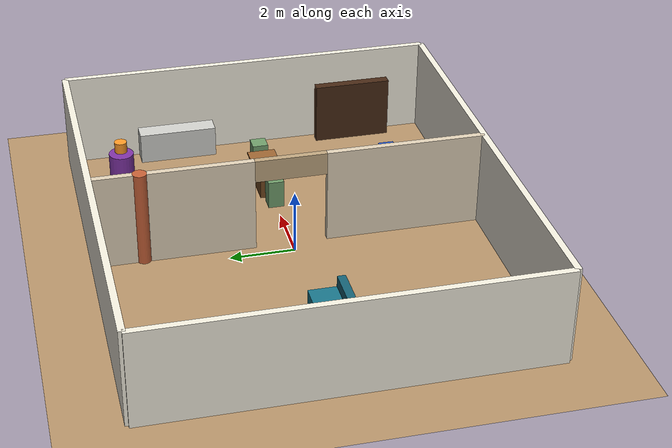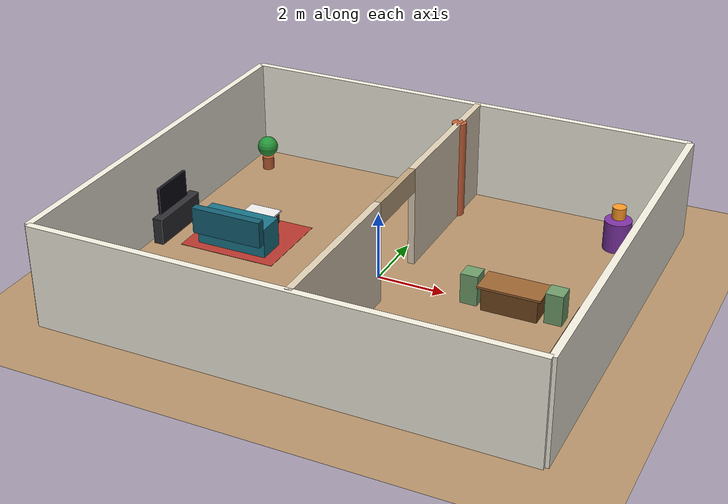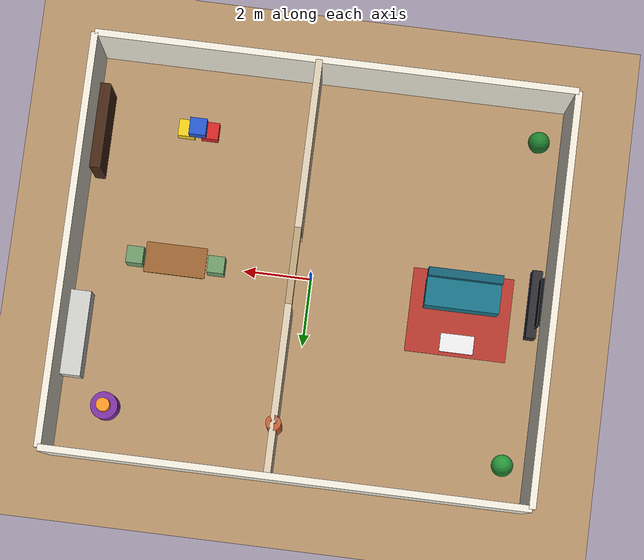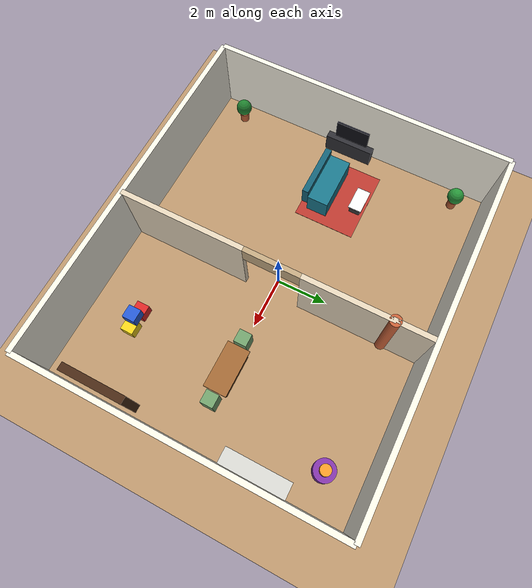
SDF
<?xml version="1.0"?>
<sdf version="1.10">

<world name="colorful_house">

  <!-- 250 Hz physics (0.004s step) instead of the 1000 Hz default.
       Big RTF win for a wheeled and arm robot; accuracy stays fine for a demo. -->
  <physics name="250hz" type="ignored">
    <max_step_size>0.004</max_step_size>
    <real_time_factor>1.0</real_time_factor>
  </physics>

  <plugin filename="gz-sim-physics-system"        name="gz::sim::systems::Physics"/>
  <plugin filename="gz-sim-scene-broadcaster-system" name="gz::sim::systems::SceneBroadcaster"/>
  <plugin filename="gz-sim-user-commands-system"  name="gz::sim::systems::UserCommands"/>
  <plugin filename="gz-sim-sensors-system"        name="gz::sim::systems::Sensors">
    <render_engine>ogre2</render_engine>
  </plugin>

  <!-- ── Atmosphere ──────────────────────────────────────────────── -->
  <atmosphere type="adiabatic"/>

  <!-- ── Lighting (single directional, no shadows = max perf) ─────── -->
  <light type="directional" name="sun">
    <cast_shadows>false</cast_shadows>
    <pose>0 0 20 0 0 0</pose>
    <diffuse>1.0 0.95 0.85 1</diffuse>
    <specular>0.3 0.28 0.24 1</specular>
    <direction>-0.4 0.15 -0.9</direction>
  </light>

  <!-- ── Floor  (warm parquet) ───────────────────────────────────── -->
  <model name="floor">
    <static>true</static>
    <link name="link">
      <collision name="col">
        <geometry><plane><normal>0 0 1</normal><size>100 100</size></plane></geometry>
      </collision>
      <visual name="vis">
        <geometry><plane><normal>0 0 1</normal><size>100 100</size></plane></geometry>
        <material>
          <ambient>0.72 0.58 0.42 1</ambient>
          <diffuse>0.72 0.58 0.42 1</diffuse>
          <specular>0.25 0.20 0.12 1</specular>
        </material>
      </visual>
    </link>
  </model>

  <!-- North wall  y=+6 -->
  <model name="wall_north">
    <static>true</static><pose>0 6 1.5 0 0 0</pose>
    <link name="link">
      <collision name="col"><geometry><box><size>14 0.2 3</size></box></geometry></collision>
      <visual name="vis">
        <geometry><box><size>14 0.2 3</size></box></geometry>
        <material>
          <ambient>0.96 0.94 0.88 1</ambient>
          <diffuse>0.96 0.94 0.88 1</diffuse>
          <specular>0.15 0.15 0.12 1</specular>
        </material>
      </visual>
    </link>
  </model>

  <!-- South wall  y=-6 -->
  <model name="wall_south">
    <static>true</static><pose>0 -6 1.5 0 0 0</pose>
    <link name="link">
      <collision name="col"><geometry><box><size>14 0.2 3</size></box></geometry></collision>
      <visual name="vis">
        <geometry><box><size>14 0.2 3</size></box></geometry>
        <material>
          <ambient>0.96 0.94 0.88 1</ambient>
          <diffuse>0.96 0.94 0.88 1</diffuse>
          <specular>0.15 0.15 0.12 1</specular>
        </material>
      </visual>
    </link>
  </model>

  <!-- West wall  x=-7 -->
  <model name="wall_west">
    <static>true</static><pose>-7 0 1.5 0 0 0</pose>
    <link name="link">
      <collision name="col"><geometry><box><size>0.2 12 3</size></box></geometry></collision>
      <visual name="vis">
        <geometry><box><size>0.2 12 3</size></box></geometry>
        <material>
          <ambient>0.96 0.94 0.88 1</ambient>
          <diffuse>0.96 0.94 0.88 1</diffuse>
          <specular>0.15 0.15 0.12 1</specular>
        </material>
      </visual>
    </link>
  </model>

  <!-- East wall  x=+7 -->
  <model name="wall_east">
    <static>true</static><pose>7 0 1.5 0 0 0</pose>
    <link name="link">
      <collision name="col"><geometry><box><size>0.2 12 3</size></box></geometry></collision>
      <visual name="vis">
        <geometry><box><size>0.2 12 3</size></box></geometry>
        <material>
          <ambient>0.96 0.94 0.88 1</ambient>
          <diffuse>0.96 0.94 0.88 1</diffuse>
          <specular>0.15 0.15 0.12 1</specular>
        </material>
      </visual>
    </link>
  </model>

  <!-- inner wall – north segment -->
  <model name="inner_wall_north">
    <static>true</static><pose>0.5 3.55 1.5 0 0 0</pose>
    <link name="link">
      <collision name="col"><geometry><box><size>0.2 4.9 3</size></box></geometry></collision>
      <visual name="vis">
        <geometry><box><size>0.2 4.9 3</size></box></geometry>
        <material>
          <ambient>0.88 0.82 0.72 1</ambient>
          <diffuse>0.88 0.82 0.72 1</diffuse>
          <specular>0.1 0.1 0.08 1</specular>
        </material>
      </visual>
    </link>
  </model>

  <!-- inner wall – south segment -->
  <model name="inner_wall_south">
    <static>true</static><pose>0.5 -3.55 1.5 0 0 0</pose>
    <link name="link">
      <collision name="col"><geometry><box><size>0.2 4.9 3</size></box></geometry></collision>
      <visual name="vis">
        <geometry><box><size>0.2 4.9 3</size></box></geometry>
        <material>
          <ambient>0.88 0.82 0.72 1</ambient>
          <diffuse>0.88 0.82 0.72 1</diffuse>
          <specular>0.1 0.1 0.08 1</specular>
        </material>
      </visual>
    </link>
  </model>

  <!-- doorway lintel (visual-only header above the gap) -->
  <model name="doorway_lintel">
    <static>true</static><pose>0.5 0 2.65 0 0 0</pose>
    <link name="link">
      <visual name="vis">
        <geometry><box><size>0.2 2.2 0.7</size></box></geometry>
        <material>
          <ambient>0.75 0.65 0.50 1</ambient>
          <diffuse>0.75 0.65 0.50 1</diffuse>
          <specular>0.1 0.1 0.08 1</specular>
        </material>
      </visual>
    </link>
  </model>

  <!-- ═══════════════════════════════════════════════════════════════
       WEST ROOM — living / lounge area
       ═══════════════════════════════════════════════════════════════ -->

  <!-- Sofa  (deep teal) -->
  <model name="sofa_body">
    <static>true</static><pose>-4.5 0 0.45 0 0 0</pose>
    <link name="link">
      <collision name="col"><geometry><box><size>2.2 0.85 0.9</size></box></geometry></collision>
      <visual name="vis">
        <geometry><box><size>2.2 0.85 0.9</size></box></geometry>
        <material>
          <ambient>0.10 0.46 0.54 1</ambient>
          <diffuse>0.10 0.46 0.54 1</diffuse>
          <specular>0.3 0.3 0.3 1</specular>
        </material>
      </visual>
    </link>
  </model>

  <!-- Sofa back-rest -->
  <model name="sofa_back">
    <static>true</static><pose>-4.5 -0.55 0.85 0 0 0</pose>
    <link name="link">
      <collision name="col"><geometry><box><size>2.2 0.25 0.8</size></box></geometry></collision>
      <visual name="vis">
        <geometry><box><size>2.2 0.25 0.8</size></box></geometry>
        <material>
          <ambient>0.08 0.38 0.46 1</ambient>
          <diffuse>0.08 0.38 0.46 1</diffuse>
          <specular>0.3 0.3 0.3 1</specular>
        </material>
      </visual>
    </link>
  </model>

  <!-- Coffee table  (white marble top) -->
  <model name="coffee_table_top">
    <static>true</static><pose>-4.5 1.4 0.38 0 0 0</pose>
    <link name="link">
      <collision name="col"><geometry><box><size>1.0 0.55 0.06</size></box></geometry></collision>
      <visual name="vis">
        <geometry><box><size>1.0 0.55 0.06</size></box></geometry>
        <material>
          <ambient>0.94 0.94 0.94 1</ambient>
          <diffuse>0.94 0.94 0.94 1</diffuse>
          <specular>0.7 0.7 0.7 1</specular>
        </material>
      </visual>
    </link>
  </model>

  <!-- Coffee table legs -->
  <model name="coffee_table_legs">
    <static>true</static><pose>-4.5 1.4 0.18 0 0 0</pose>
    <link name="link">
      <collision name="col"><geometry><box><size>0.9 0.45 0.36</size></box></geometry></collision>
      <visual name="vis">
        <geometry><box><size>0.9 0.45 0.36</size></box></geometry>
        <material>
          <ambient>0.22 0.22 0.22 1</ambient>
          <diffuse>0.22 0.22 0.22 1</diffuse>
          <specular>0.5 0.5 0.5 1</specular>
        </material>
      </visual>
    </link>
  </model>

  <!-- TV / media stand  (charcoal) -->
  <model name="tv_stand">
    <static>true</static><pose>-6.6 0 0.4 0 0 0</pose>
    <link name="link">
      <collision name="col"><geometry><box><size>0.3 2.0 0.8</size></box></geometry></collision>
      <visual name="vis">
        <geometry><box><size>0.3 2.0 0.8</size></box></geometry>
        <material>
          <ambient>0.18 0.18 0.20 1</ambient>
          <diffuse>0.18 0.18 0.20 1</diffuse>
          <specular>0.6 0.6 0.6 1</specular>
        </material>
      </visual>
    </link>
  </model>

  <!-- TV screen  (dark slate) -->
  <model name="tv_screen">
    <static>true</static><pose>-6.7 0 1.2 0 0 0</pose>
    <link name="link">
      <collision name="col"><geometry><box><size>0.08 1.4 0.85</size></box></geometry></collision>
      <visual name="vis">
        <geometry><box><size>0.08 1.4 0.85</size></box></geometry>
        <material>
          <ambient>0.05 0.05 0.08 1</ambient>
          <diffuse>0.05 0.05 0.08 1</diffuse>
          <specular>0.9 0.9 0.9 1</specular>
        </material>
      </visual>
    </link>
  </model>

  <!-- Rug  (terracotta-red, raised 1 mm) -->
  <model name="rug">
    <static>true</static><pose>-4.5 0.5 0.005 0 0 0</pose>
    <link name="link">
      <visual name="vis">
        <geometry><box><size>3.0 2.5 0.01</size></box></geometry>
        <material>
          <ambient>0.72 0.22 0.18 1</ambient>
          <diffuse>0.72 0.22 0.18 1</diffuse>
          <specular>0.05 0.05 0.05 1</specular>
        </material>
      </visual>
    </link>
  </model>

  <!-- Plant NW  (terracotta pot + green foliage) -->
  <model name="plant_nw_pot">
    <static>true</static><pose>-6.2 4.8 0.2 0 0 0</pose>
    <link name="link">
      <collision name="col">
        <geometry><cylinder><radius>0.18</radius><length>0.4</length></cylinder></geometry>
      </collision>
      <visual name="vis">
        <geometry><cylinder><radius>0.18</radius><length>0.4</length></cylinder></geometry>
        <material>
          <ambient>0.72 0.36 0.20 1</ambient>
          <diffuse>0.72 0.36 0.20 1</diffuse>
          <specular>0.1 0.1 0.08 1</specular>
        </material>
      </visual>
    </link>
  </model>

  <model name="plant_nw_foliage">
    <static>true</static><pose>-6.2 4.8 0.75 0 0 0</pose>
    <link name="link">
      <collision name="col">
        <geometry><sphere><radius>0.32</radius></sphere></geometry>
      </collision>
      <visual name="vis">
        <geometry><sphere><radius>0.32</radius></sphere></geometry>
        <material>
          <ambient>0.15 0.58 0.22 1</ambient>
          <diffuse>0.15 0.58 0.22 1</diffuse>
          <specular>0.05 0.12 0.05 1</specular>
        </material>
      </visual>
    </link>
  </model>

  <!-- Plant SW -->
  <model name="plant_sw_pot">
    <static>true</static><pose>-6.2 -4.8 0.2 0 0 0</pose>
    <link name="link">
      <collision name="col">
        <geometry><cylinder><radius>0.18</radius><length>0.4</length></cylinder></geometry>
      </collision>
      <visual name="vis">
        <geometry><cylinder><radius>0.18</radius><length>0.4</length></cylinder></geometry>
        <material>
          <ambient>0.72 0.36 0.20 1</ambient>
          <diffuse>0.72 0.36 0.20 1</diffuse>
          <specular>0.1 0.1 0.08 1</specular>
        </material>
      </visual>
    </link>
  </model>

  <model name="plant_sw_foliage">
    <static>true</static><pose>-6.2 -4.8 0.75 0 0 0</pose>
    <link name="link">
      <collision name="col">
        <geometry><sphere><radius>0.32</radius></sphere></geometry>
      </collision>
      <visual name="vis">
        <geometry><sphere><radius>0.32</radius></sphere></geometry>
        <material>
          <ambient>0.12 0.50 0.18 1</ambient>
          <diffuse>0.12 0.50 0.18 1</diffuse>
          <specular>0.05 0.12 0.05 1</specular>
        </material>
      </visual>
    </link>
  </model>

  <!-- ═══════════════════════════════════════════════════════════════
       EAST ROOM — kitchen / lab / workspace
       ═══════════════════════════════════════════════════════════════ -->

  <!-- Dining table  (warm oak) -->
  <model name="dining_table_top">
    <static>true</static><pose>4.0 0 0.72 0 0 0</pose>
    <link name="link">
      <collision name="col"><geometry><box><size>1.8 0.9 0.06</size></box></geometry></collision>
      <visual name="vis">
        <geometry><box><size>1.8 0.9 0.06</size></box></geometry>
        <material>
          <ambient>0.62 0.40 0.20 1</ambient>
          <diffuse>0.62 0.40 0.20 1</diffuse>
          <specular>0.3 0.22 0.10 1</specular>
        </material>
      </visual>
    </link>
  </model>

  <model name="dining_table_legs">
    <static>true</static><pose>4.0 0 0.34 0 0 0</pose>
    <link name="link">
      <collision name="col"><geometry><box><size>1.6 0.75 0.68</size></box></geometry></collision>
      <visual name="vis">
        <geometry><box><size>1.6 0.75 0.68</size></box></geometry>
        <material>
          <ambient>0.45 0.28 0.12 1</ambient>
          <diffuse>0.45 0.28 0.12 1</diffuse>
          <specular>0.2 0.15 0.08 1</specular>
        </material>
      </visual>
    </link>
  </model>

  <!-- Chair east  (sage green) -->
  <model name="chair_east">
    <static>true</static><pose>5.2 0 0.45 0 0 0</pose>
    <link name="link">
      <collision name="col"><geometry><box><size>0.5 0.5 0.9</size></box></geometry></collision>
      <visual name="vis">
        <geometry><box><size>0.5 0.5 0.9</size></box></geometry>
        <material>
          <ambient>0.44 0.62 0.42 1</ambient>
          <diffuse>0.44 0.62 0.42 1</diffuse>
          <specular>0.1 0.15 0.1 1</specular>
        </material>
      </visual>
    </link>
  </model>

  <!-- Chair west  (sage green) -->
  <model name="chair_west">
    <static>true</static><pose>2.8 0 0.45 0 0 0</pose>
    <link name="link">
      <collision name="col"><geometry><box><size>0.5 0.5 0.9</size></box></geometry></collision>
      <visual name="vis">
        <geometry><box><size>0.5 0.5 0.9</size></box></geometry>
        <material>
          <ambient>0.44 0.62 0.42 1</ambient>
          <diffuse>0.44 0.62 0.42 1</diffuse>
          <specular>0.1 0.15 0.1 1</specular>
        </material>
      </visual>
    </link>
  </model>

  <!-- Bookshelf  (dark walnut) -->
  <model name="bookshelf">
    <static>true</static><pose>6.6 -3.5 1.0 0 0 0</pose>
    <link name="link">
      <collision name="col"><geometry><box><size>0.3 2.5 2.0</size></box></geometry></collision>
      <visual name="vis">
        <geometry><box><size>0.3 2.5 2.0</size></box></geometry>
        <material>
          <ambient>0.28 0.16 0.08 1</ambient>
          <diffuse>0.28 0.16 0.08 1</diffuse>
          <specular>0.2 0.15 0.08 1</specular>
        </material>
      </visual>
    </link>
  </model>

  <!-- Coloured crate stack ── red, yellow, blue -->
  <model name="crate_red">
    <static>true</static><pose>3.5 -4.0 0.25 0 0 0</pose>
    <link name="link">
      <collision name="col"><geometry><box><size>0.5 0.5 0.5</size></box></geometry></collision>
      <visual name="vis">
        <geometry><box><size>0.5 0.5 0.5</size></box></geometry>
        <material>
          <ambient>0.85 0.15 0.15 1</ambient>
          <diffuse>0.85 0.15 0.15 1</diffuse>
          <specular>0.3 0.1 0.1 1</specular>
        </material>
      </visual>
    </link>
  </model>

  <model name="crate_yellow">
    <static>true</static><pose>4.2 -4.0 0.25 0 0 0</pose>
    <link name="link">
      <collision name="col"><geometry><box><size>0.5 0.5 0.5</size></box></geometry></collision>
      <visual name="vis">
        <geometry><box><size>0.5 0.5 0.5</size></box></geometry>
        <material>
          <ambient>0.95 0.82 0.10 1</ambient>
          <diffuse>0.95 0.82 0.10 1</diffuse>
          <specular>0.3 0.3 0.05 1</specular>
        </material>
      </visual>
    </link>
  </model>

  <model name="crate_blue">
    <static>true</static><pose>3.85 -4.0 0.75 0 0 0</pose>
    <link name="link">
      <collision name="col"><geometry><box><size>0.5 0.5 0.5</size></box></geometry></collision>
      <visual name="vis">
        <geometry><box><size>0.5 0.5 0.5</size></box></geometry>
        <material>
          <ambient>0.15 0.35 0.82 1</ambient>
          <diffuse>0.15 0.35 0.82 1</diffuse>
          <specular>0.2 0.2 0.5 1</specular>
        </material>
      </visual>
    </link>
  </model>

  <!-- Worktop counter  (light grey) -->
  <model name="counter">
    <static>true</static><pose>6.6 2.5 0.5 0 0 0</pose>
    <link name="link">
      <collision name="col"><geometry><box><size>0.6 2.5 1.0</size></box></geometry></collision>
      <visual name="vis">
        <geometry><box><size>0.6 2.5 1.0</size></box></geometry>
        <material>
          <ambient>0.82 0.82 0.80 1</ambient>
          <diffuse>0.82 0.82 0.80 1</diffuse>
          <specular>0.5 0.5 0.5 1</specular>
        </material>
      </visual>
    </link>
  </model>

  <!-- Round pillar  (terracotta accent) -->
  <model name="pillar">
    <static>true</static><pose>0.5 4.5 1.5 0 0 0</pose>
    <link name="link">
      <collision name="col">
        <geometry><cylinder><radius>0.22</radius><length>3.0</length></cylinder></geometry>
      </collision>
      <visual name="vis">
        <geometry><cylinder><radius>0.22</radius><length>3.0</length></cylinder></geometry>
        <material>
          <ambient>0.78 0.38 0.22 1</ambient>
          <diffuse>0.78 0.38 0.22 1</diffuse>
          <specular>0.2 0.12 0.08 1</specular>
        </material>
      </visual>
    </link>
  </model>

  <!-- Small round table NE  (purple accent) -->
  <model name="side_table">
    <static>true</static><pose>5.5 4.5 0.45 0 0 0</pose>
    <link name="link">
      <collision name="col">
        <geometry><cylinder><radius>0.4</radius><length>0.9</length></cylinder></geometry>
      </collision>
      <visual name="vis">
        <geometry><cylinder><radius>0.4</radius><length>0.9</length></cylinder></geometry>
        <material>
          <ambient>0.50 0.20 0.65 1</ambient>
          <diffuse>0.50 0.20 0.65 1</diffuse>
          <specular>0.3 0.2 0.4 1</specular>
        </material>
      </visual>
    </link>
  </model>

  <!-- Lamp on side table  (orange glow) -->
  <!-- lamp shade kept as visual-only, no point light -->
  <model name="lamp_shade">
    <static>true</static><pose>5.5 4.5 1.15 0 0 0</pose>
    <link name="link">
      <visual name="vis">
        <geometry><cylinder><radius>0.2</radius><length>0.35</length></cylinder></geometry>
        <material>
          <ambient>1.0 0.60 0.15 1</ambient>
          <diffuse>1.0 0.60 0.15 1</diffuse>
          <emissive>0.8 0.40 0.05 1</emissive>
          <specular>0.2 0.2 0.1 1</specular>
        </material>
      </visual>
    </link>
  </model>

</world>
</sdf>
